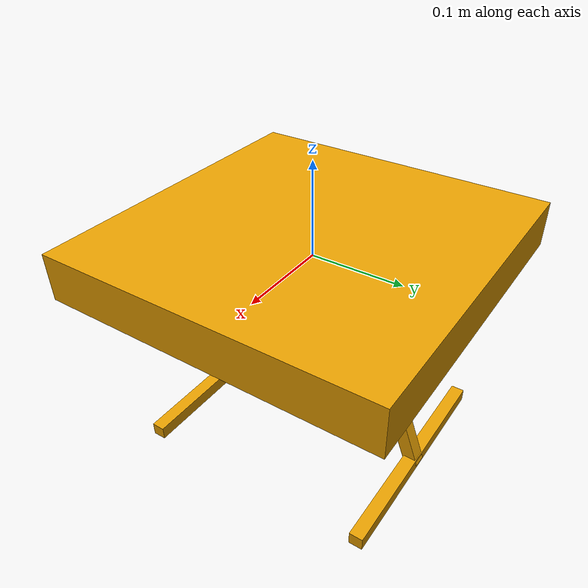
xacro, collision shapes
<?xml version="1.0" ?>
<robot xmlns:xacro="http://www.ros.org/wiki/xacro" name="x500">
  <xacro:property name="x500_mesh_package" value="clover2_description" />
  <xacro:property name="x500_mesh_root" value="models/x500_base/meshes" />
  <xacro:property name="x500_base_mass" value="2.0" />
  <xacro:property name="x500_rotor_mass" value="0.016076923076923075" />
  <xacro:property name="x500_arm_half" value="0.174" />
  <xacro:property name="x500_rotor_z" value="0.06" />
  <xacro:property name="x500_prop_scale" value="0.8461538461538461" />
  <xacro:property name="x500_rotor_ixx" value="3.8464910483993325e-07" />
  <xacro:property name="x500_rotor_iyy" value="2.6115851691700804e-05" />
  <xacro:property name="x500_rotor_izz" value="2.649858234714004e-05" />
  <xacro:property
        name="x500_collision_box"
        value="0.2792307692307692 0.016923076923076923 0.0008461538461538462"
    />
  <xacro:property
        name="x500_prop_visual_xyz"
        value="-0.022 -0.14638461538461536 -0.016"
    />

  <xacro:include
        filename="$(find clover2_description)/robots/xacro/x500/x500_base.xacro"
    />

  <xacro:x500_base_link />
</robot>

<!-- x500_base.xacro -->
<robot xmlns:xacro="http://www.ros.org/wiki/xacro">
  <xacro:macro name="x500_base_link">
    <link name="base_link">
      <inertial>
        <origin xyz="0 0 0" rpy="0 0 0" />
        <mass value="${x500_base_mass}" />
        <inertia
                    ixx="0.02166666666666667"
                    ixy="0"
                    ixz="0"
                    iyy="0.02166666666666667"
                    iyz="0"
                    izz="0.04000000000000001"
                />
      </inertial>
      <visual>
        <origin xyz="0 0 0.025" rpy="0 0 3.141592654" />
        <geometry>
          <mesh
                        filename="package://clover2_description/${x500_mesh_root}/NXP-HGD-CF.dae"
                        scale="1 1 1"
                    />
        </geometry>
      </visual>
      <visual>
        <origin xyz="0.174 0.174 0.032" rpy="0 0 -0.45" />
        <geometry>
          <mesh
                        filename="package://clover2_description/${x500_mesh_root}/5010Base.dae"
                        scale="1 1 1"
                    />
        </geometry>
      </visual>
      <visual>
        <origin xyz="-0.174 0.174 0.032" rpy="0 0 -0.45" />
        <geometry>
          <mesh
                        filename="package://clover2_description/${x500_mesh_root}/5010Base.dae"
                        scale="1 1 1"
                    />
        </geometry>
      </visual>
      <visual>
        <origin xyz="0.174 -0.174 0.032" rpy="0 0 -0.45" />
        <geometry>
          <mesh
                        filename="package://clover2_description/${x500_mesh_root}/5010Base.dae"
                        scale="1 1 1"
                    />
        </geometry>
      </visual>
      <visual>
        <origin xyz="-0.174 -0.174 0.032" rpy="0 0 -0.45" />
        <geometry>
          <mesh
                        filename="package://clover2_description/${x500_mesh_root}/5010Base.dae"
                        scale="1 1 1"
                    />
        </geometry>
      </visual>
      <collision>
        <origin xyz="0 0 0.007" rpy="0 0 0" />
        <geometry>
          <box size="0.35355339059327373 0.35355339059327373 0.05" />
        </geometry>
      </collision>
      <collision>
        <origin xyz="0 -0.098 -0.123" rpy="-0.35 0 0" />
        <geometry>
          <box size="0.015 0.015 0.21" />
        </geometry>
      </collision>
      <collision>
        <origin xyz="0 0.098 -0.123" rpy="0.35 0 0" />
        <geometry>
          <box size="0.015 0.015 0.21" />
        </geometry>
      </collision>
      <collision>
        <origin xyz="0 -0.132 -0.2195" rpy="0 0 0" />
        <geometry>
          <box size="0.25 0.015 0.015" />
        </geometry>
      </collision>
      <collision>
        <origin xyz="0 0.132 -0.2195" rpy="0 0 0" />
        <geometry>
          <box size="0.25 0.015 0.015" />
        </geometry>
      </collision>
    </link>
  </xacro:macro>
</robot>
